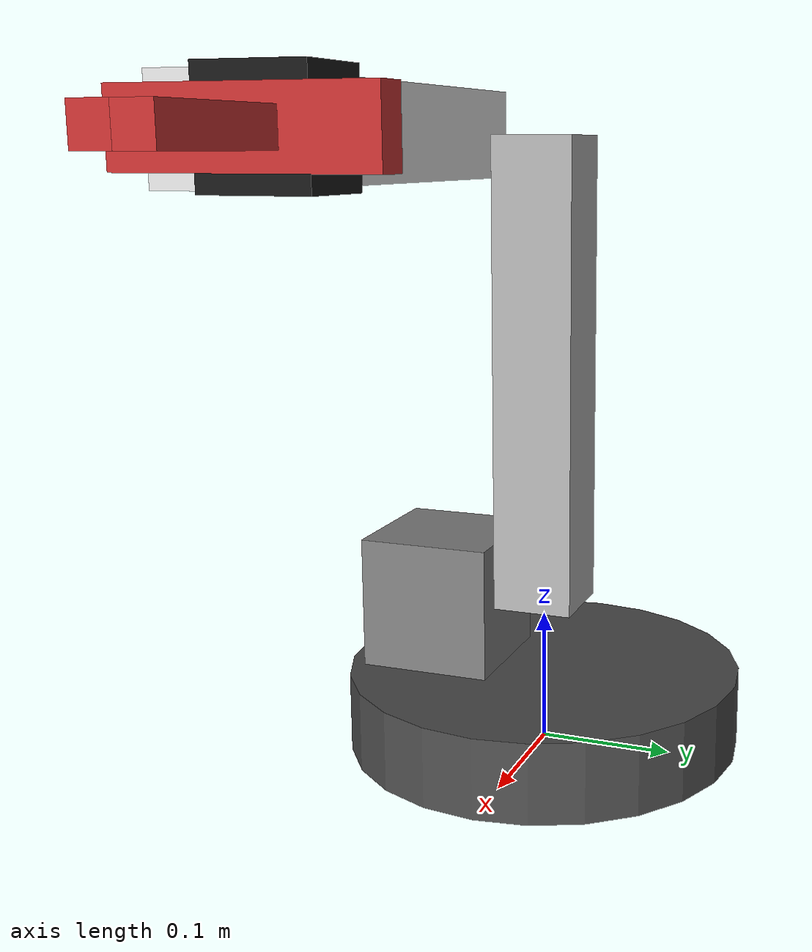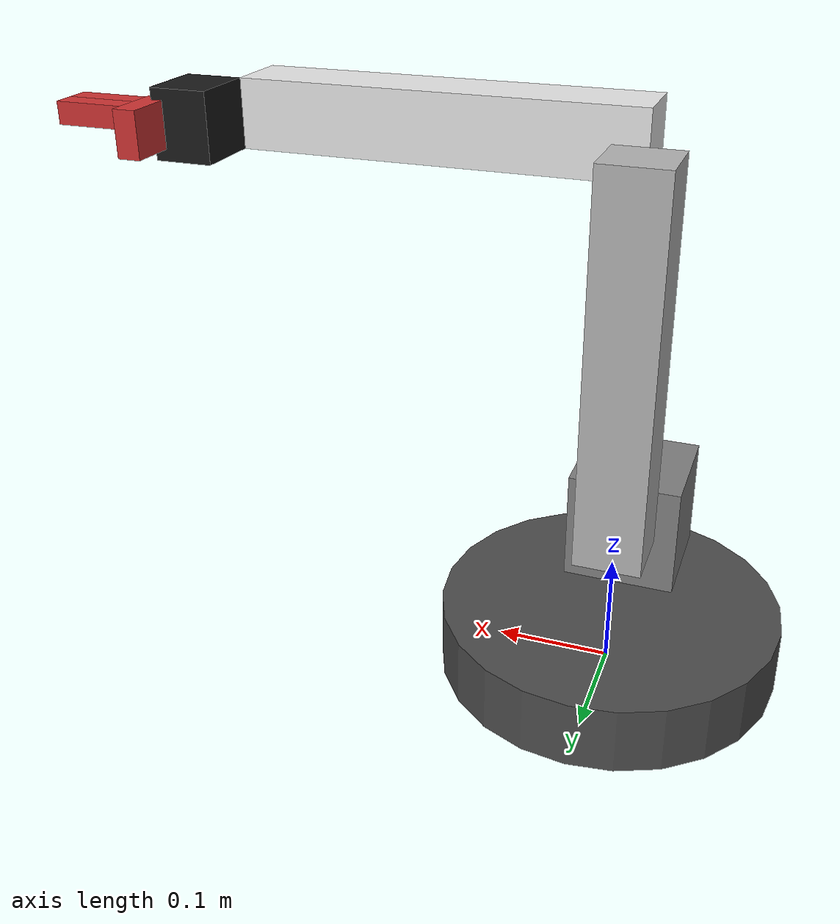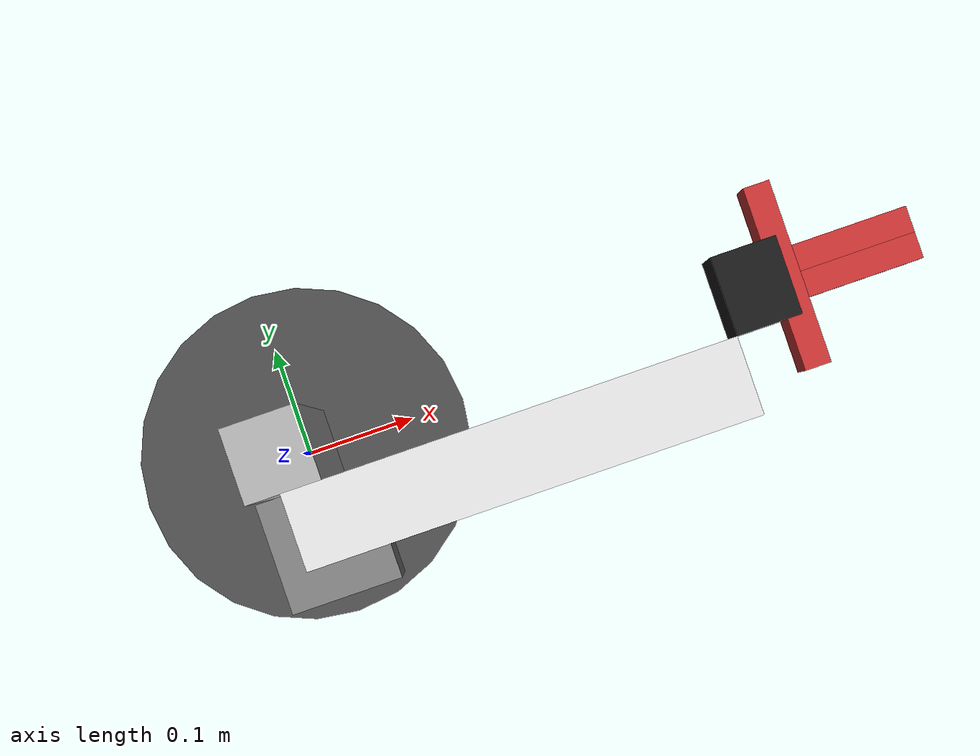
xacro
<?xml version="1.0"?>
<robot xmlns:xacro="http://www.ros.org/wiki/xacro" name="r4bot">
    <xacro:arg name="initial_positions_file" default="initial_positions.yaml" />

    <!-- Import r4bot urdf file -->
    <xacro:include filename="$(find arm)/description/urdf/r4bot.urdf.xacro" />

    <!-- Import control_xacro -->
    <xacro:include filename="r4bot.ros2_control.xacro" />

    <xacro:r4bot_ros2_control name="FakeSystem" initial_positions_file="$(arg initial_positions_file)"/>

</robot>

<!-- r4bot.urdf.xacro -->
<robot xmlns:xacro="http://wiki.ros.org/xacro" name="r4bot">

  <!-- Import r6bot macro -->
  <xacro:include filename="$(find arm)/description/urdf/r4bot_description.urdf.xacro"/>

  <!-- create link fixed to the "world" -->
  <link name="world"/>

  <xacro:arm/>

  <!-- Import r4bot ros2_control description -->
  <xacro:include filename="$(find arm)/description/urdf/r4bot.ros2_control.xacro" />
  <xacro:r4bot_ros2_control name="r4bot"/>

</robot>

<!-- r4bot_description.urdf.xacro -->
<robot xmlns:xacro="http://www.ros.org/wiki/xacro">

  <xacro:macro name="arm">

  <!-- ========== VARIABLE DEFINITIONS ========== -->

  <!-- Base Link Properties -->
  <xacro:property name="base_radius" value="0.15"/>
  <xacro:property name="base_length" value="0.06"/>
  <xacro:property name="base_height" value="0.03"/>
  <xacro:property name="base_mass" value="2.0"/>

  <!-- Link 1 Properties -->
  <xacro:property name="link1_length" value="0.1"/>
  <xacro:property name="link1_width" value="0.1"/>
  <xacro:property name="link1_height" value="0.1"/>
  <xacro:property name="link1_offset_y" value="0.08"/>
  <xacro:property name="link1_offset_z" value="0.05"/>
  <xacro:property name="link1_mass" value="1.5"/>

  <!-- Link 2 Properties -->
  <xacro:property name="link2_length" value="0.06"/>
  <xacro:property name="link2_width" value="0.06"/>
  <xacro:property name="link2_height" value="0.35"/>
  <xacro:property name="link2_offset_y" value="${link2_length/2}"/>
  <xacro:property name="link2_offset_z" value="${link2_height/2}"/>
  <xacro:property name="link2_mass" value="3.0"/>

  <!-- Link 3 Properties -->
  <xacro:property name="link3_length" value="0.35"/>
  <xacro:property name="link3_width" value="0.06"/>
  <xacro:property name="link3_height" value="0.06"/>
  <xacro:property name="link3_offset_x" value="${link3_length/2}"/>
  <xacro:property name="link3_offset_y" value="${link3_width/2}"/>
  <xacro:property name="link3_offset_z" value="-0.03"/>
  <xacro:property name="link3_mass" value="2.0"/>

  <!-- Link 4 Properties -->
  <xacro:property name="link4_length" value="0.05"/>
  <xacro:property name="link4_width" value="0.06"/>
  <xacro:property name="link4_height" value="0.06"/>
  <xacro:property name="link4_offset_x" value="${link4_length/2}"/>
  <xacro:property name="link4_offset_y" value="${link4_width/2}"/>
  <xacro:property name="link4_offset_z" value="0.03"/>
  <xacro:property name="link4_mass" value="1.0"/>

  <!-- Gripper Properties -->
  <xacro:property name="gripper_base_length" value="0.02"/>
  <xacro:property name="gripper_base_width" value="0.14"/>
  <xacro:property name="gripper_base_height" value="0.04"/>
  <xacro:property name="gripper_base_offset_z" value="0.03"/>
  <xacro:property name="gripper_base_mass" value="0.2"/>

  <xacro:property name="gripper_finger_length" value="0.1"/>
  <xacro:property name="gripper_finger_width" value="0.02"/>
  <xacro:property name="gripper_finger_height" value="0.02"/>
  <xacro:property name="gripper_finger_mass" value="0.1"/>
  <xacro:property name="gripper_max_opening" value="0.1"/>

  <!-- End Effector Properties -->
  <xacro:property name="end_effector_offset_x" value="0.06"/>

  <!-- ========== JOINT PROPERTIES ========== -->

  <!-- Joint angle variables (default values in radians) -->
  <xacro:property name="joint_1_angle" value="0.0"/>
  <xacro:property name="joint_2_angle" value="0.0"/>
  <xacro:property name="joint_3_angle" value="${pi/2}"/>
  <xacro:property name="joint_4_angle" value="0.0"/>

  <!-- Joint limit variables for revolute joints (180 degree range) -->
  <xacro:property name="joint_1_lower_limit" value="${-pi/2}"/>
  <xacro:property name="joint_1_upper_limit" value="${pi/2}"/>
  <xacro:property name="joint_2_lower_limit" value="${-pi/2}"/>
  <xacro:property name="joint_2_upper_limit" value="${pi/2}"/>
  <xacro:property name="joint_3_lower_limit" value="${-pi/2}"/>
  <xacro:property name="joint_3_upper_limit" value="${pi/2}"/>
  <xacro:property name="joint_4_lower_limit" value="${-pi/2}"/>
  <xacro:property name="joint_4_upper_limit" value="${pi/2}"/>

  <!-- Joint effort and velocity limits -->
  <xacro:property name="revolute_joint_effort" value="1000.0"/>
  <xacro:property name="revolute_joint_velocity" value="2.5"/>
  <xacro:property name="prismatic_joint_effort" value="50.0"/>
  <xacro:property name="prismatic_joint_velocity" value="0.5"/>

  <!-- Joint origin offsets (calculated from link dimensions) -->
  <xacro:property name="joint_1_offset_z" value="${base_length}"/>
  <xacro:property name="joint_2_offset_y" value="${link1_offset_y - link1_length/2}"/>
  <xacro:property name="joint_2_offset_z" value="${link1_offset_z}"/>
  <xacro:property name="joint_3_offset_z" value="${link2_height}"/>
  <xacro:property name="joint_4_offset_x" value="${link3_length}"/>
  <xacro:property name="joint_4_offset_y" value="${link4_offset_y}"/>
  <xacro:property name="gripper_base_joint_offset_x" value="${link4_offset_x + link4_length/2}"/>

  <!-- ========== COLOR PROPERTIES ========== -->

  <!-- Named color definitions -->
  <xacro:property name="black" value="0.1 0.1 0.1 1.0"/>
  <xacro:property name="dark_grey" value="0.3 0.3 0.3 1.0"/>
  <xacro:property name="grey" value="0.5 0.5 0.5 1.0"/>
  <xacro:property name="light_grey" value="0.7 0.7 0.7 1.0"/>
  <xacro:property name="white" value="0.9 0.9 0.9 1.0"/>
  <xacro:property name="red" value="0.8 0.2 0.2 1.0"/>
  <xacro:property name="green" value="0.2 0.8 0.2 1.0"/>
  <xacro:property name="blue" value="0.2 0.2 0.8 1.0"/>

  <!-- Color assignment for each link -->
  <xacro:property name="base_color" value="${dark_grey}"/>
  <xacro:property name="link1_color" value="${grey}"/>
  <xacro:property name="link2_color" value="${light_grey}"/>
  <xacro:property name="link3_color" value="${white}"/>
  <xacro:property name="link4_color" value="${black}"/>
  <xacro:property name="gripper_color" value="${red}"/>

  <!-- ========== ROBOT STRUCTURE ========== -->

  <!-- ========== GEOMETRY PROPERTIES ========== -->

  <!-- Basic cylindrical base link -->
  <link name="base_link">
    <visual>
      <origin xyz="0 0 ${base_height}" rpy="0 0 0"/>
      <geometry>
        <cylinder radius="${base_radius}" length="${base_length}"/>
      </geometry>
      <material name="base_material">
        <color rgba="${base_color}"/>
      </material>
    </visual>
    <collision>
      <origin xyz="0 0 ${base_height}" rpy="0 0 0"/>
      <geometry>
        <cylinder radius="${base_radius}" length="${base_length}"/>
      </geometry>
    </collision>
    <inertial>
      <mass value="${base_mass}"/>
      <origin xyz="0 0 ${base_height}" rpy="0 0 0"/>
      <inertia ixx="0.01" ixy="0.0" ixz="0.0" iyy="0.01" iyz="0.0" izz="0.01"/>
    </inertial>
  </link>

  <!-- base_joint fixes base_link to the environment -->
  <joint name="base_joint" type="fixed">
    <parent link="world"/>
    <child link="base_link"/>
    <origin xyz="0 0 0" rpy="0 0 0"/>
    <axis xyz="0 0 1"/>
  </joint>

  <!-- joints - main serial chain -->
  <joint name="joint_1" type="revolute">
    <parent link="base_link"/>
    <child link="link_1"/>
    <origin xyz="0 0 ${joint_1_offset_z}" rpy="0 0 0"/>
    <axis xyz="0 0 1"/>
    <limit effort="${revolute_joint_effort}" lower="${joint_1_lower_limit}" upper="${joint_1_upper_limit}" velocity="${revolute_joint_velocity}"/>
  </joint>

  <link name="link_1">
    <visual>
      <origin xyz="0 ${-link1_offset_y} ${link1_offset_z}" rpy="0 0 0"/>
      <geometry>
        <box size="${link1_length} ${link1_width} ${link1_height}"/>
      </geometry>
      <material name="link1_material">
        <color rgba="${link1_color}"/>
      </material>
    </visual>
    <collision>
      <origin xyz="0 ${-link1_offset_y} ${link1_offset_z}" rpy="0 0 0"/>
      <geometry>
        <box size="${link1_length} ${link1_width} ${link1_height}"/>
      </geometry>
    </collision>
    <inertial>
      <mass value="${link1_mass}"/>
      <origin xyz="0 0 0.09" rpy="0 0 0"/>
      <inertia ixx="0.008" ixy="0.0" ixz="0.0" iyy="0.008" iyz="0.0" izz="0.004"/>
    </inertial>
  </link>

  <joint name="joint_2" type="revolute">
    <parent link="link_1"/>
    <child link="link_2"/>
    <origin xyz="0 ${-joint_2_offset_y} ${joint_2_offset_z}" rpy="0 0 0"/>
    <axis xyz="0 1 0"/>
    <limit effort="${revolute_joint_effort}" lower="${joint_2_lower_limit}" upper="${joint_2_upper_limit}" velocity="${revolute_joint_velocity}"/>
  </joint>

  <link name="link_2">
    <visual>
      <origin xyz="0 ${link2_offset_y} ${link2_offset_z}" rpy="0 0 0"/>
      <geometry>
        <box size="${link2_length} ${link2_width} ${link2_height}"/>
      </geometry>
      <material name="link2_material">
        <color rgba="${link2_color}"/>
      </material>
    </visual>
    <collision>
      <origin xyz="0 ${link2_offset_y} ${link2_offset_z}" rpy="0 0 0"/>
      <geometry>
        <box size="${link2_length} ${link2_width} ${link2_height}"/>
      </geometry>
    </collision>
    <inertial>
      <mass value="${link2_mass}"/>
      <origin xyz="0.34 0 0" rpy="0 0 0"/>
      <inertia ixx="0.005" ixy="0.0" ixz="0.0" iyy="0.12" iyz="0.0" izz="0.12"/>
    </inertial>
  </link>

  <joint name="joint_3" type="revolute">
    <parent link="link_2"/>
    <child link="link_3"/>
    <origin xyz="0 0 ${joint_3_offset_z}" rpy="0 0 0"/>
    <axis xyz="0 1 0"/>
    <limit effort="${revolute_joint_effort}" lower="${joint_3_lower_limit}" upper="${joint_3_upper_limit}" velocity="${revolute_joint_velocity}"/>
  </joint>

  <link name="link_3">
    <visual>
      <origin xyz="${link3_offset_x} ${-link3_offset_y} 0" rpy="0 0 0"/>
      <geometry>
        <box size="${link3_length} ${link3_width} ${link3_height}"/>
      </geometry>
      <material name="link3_material">
        <color rgba="${link3_color}"/>
      </material>
    </visual>
    <collision>
      <origin xyz="${link3_offset_x} ${-link3_offset_y} 0" rpy="0 0 0"/>
      <geometry>
        <box size="${link3_length} ${link3_width} ${link3_height}"/>
      </geometry>
    </collision>
    <inertial>
      <mass value="${link3_mass}"/>
      <origin xyz="0.25 0 0" rpy="0 0 0"/>
      <inertia ixx="0.003" ixy="0.0" ixz="0.0" iyy="0.045" iyz="0.0" izz="0.045"/>
    </inertial>
  </link>

  <joint name="joint_4" type="revolute">
    <parent link="link_3"/>
    <child link="link_4"/>
    <origin xyz="${joint_4_offset_x} 0 0" rpy="0 0 0"/>
    <axis xyz="0 1 0"/>
    <limit effort="${revolute_joint_effort}" lower="${joint_4_lower_limit}" upper="${joint_4_upper_limit}" velocity="${revolute_joint_velocity}"/>
  </joint>

  <link name="link_4">
    <visual>
      <origin xyz="${link4_offset_x} ${link4_offset_y} 0" rpy="0 0 0"/>
      <geometry>
        <box size="${link4_length} ${link4_width} ${link4_height}"/>
      </geometry>
      <material name="link4_material">
        <color rgba="${link4_color}"/>
      </material>
    </visual>
    <collision>
      <origin xyz="${link4_offset_x} 0 0" rpy="0 0 0"/>
      <geometry>
        <box size="${link4_length} ${link4_width} ${link4_height}"/>
      </geometry>
    </collision>
    <inertial>
      <mass value="${link4_mass}"/>
      <origin xyz="0.09 0 0" rpy="0 0 0"/>
      <inertia ixx="0.001" ixy="0.0" ixz="0.0" iyy="0.003" iyz="0.0" izz="0.003"/>
    </inertial>
  </link>

  <!-- Gripper base link (attached to link_4) -->
  <joint name="gripper_base_joint" type="fixed">
    <parent link="link_4"/>
    <child link="gripper_base"/>
    <origin xyz="${link4_length} ${link4_offset_y} 0" rpy="0 0 0"/>
  </joint>

  <link name="gripper_base">
    <visual>
      <origin xyz="0 0 0" rpy="0 0 0"/>
      <geometry>
        <box size="${gripper_base_length} ${gripper_base_width} ${gripper_base_height}"/>
      </geometry>
      <material name="gripper_base_material">
        <color rgba="${gripper_color}"/>
      </material>
    </visual>
    <collision>
      <origin xyz="0 0 0" rpy="0 0 0"/>
      <geometry>
        <box size="${gripper_base_length} ${gripper_base_width} ${gripper_base_height}"/>
      </geometry>
    </collision>
    <inertial>
      <mass value="${gripper_base_mass}"/>
      <origin xyz="0 0 0" rpy="0 0 0"/>
      <inertia ixx="0.0001" ixy="0.0" ixz="0.0" iyy="0.0001" iyz="0.0" izz="0.0001"/>
    </inertial>
  </link>

  <!-- Left finger prismatic joint and link -->
  <joint name="gripper_left_finger_joint" type="prismatic">
    <parent link="gripper_base"/>
    <child link="gripper_left_finger"/>
    <origin xyz="0 0 0" rpy="0 0 0"/>
    <axis xyz="0 1 0"/>
    <limit effort="${prismatic_joint_effort}" lower="0.0" upper="${gripper_max_opening/2}" velocity="${prismatic_joint_velocity}"/>
  </joint>

  <link name="gripper_left_finger">
    <visual>
      <origin xyz="${gripper_finger_length/2} ${gripper_finger_width/2} 0" rpy="0 0 0"/>
      <geometry>
        <box size="${gripper_finger_length} ${gripper_finger_width} ${gripper_finger_height}"/>
      </geometry>
      <material name="gripper_finger_material">
        <color rgba="${gripper_color}"/>
      </material>
    </visual>
    <collision>
      <origin xyz="${gripper_finger_length/2} ${gripper_finger_width/2} 0" rpy="0 0 0"/>
      <geometry>
        <box size="${gripper_finger_length} ${gripper_finger_width} ${gripper_finger_height}"/>
      </geometry>
    </collision>
    <inertial>
      <mass value="${gripper_finger_mass}"/>
      <origin xyz="0 ${-gripper_finger_width/2} ${gripper_finger_height/2}" rpy="0 0 0"/>
      <inertia ixx="0.00005" ixy="0.0" ixz="0.0" iyy="0.00005" iyz="0.0" izz="0.00005"/>
    </inertial>
  </link>

  <!-- Right finger prismatic joint and link -->
  <joint name="gripper_right_finger_joint" type="prismatic">
    <parent link="gripper_base"/>
    <child link="gripper_right_finger"/>
    <origin xyz="0 0 0" rpy="0 0 0"/>
    <axis xyz="0 -1 0"/>
    <limit effort="${prismatic_joint_effort}" lower="0.0" upper="${gripper_max_opening/2}" velocity="${prismatic_joint_velocity}"/>
  </joint>

  <link name="gripper_right_finger">
    <visual>
      <origin xyz="${gripper_finger_length/2} ${-gripper_finger_width/2} 0" rpy="0 0 0"/>
      <geometry>
        <box size="${gripper_finger_length} ${gripper_finger_width} ${gripper_finger_height}"/>
      </geometry>
      <material name="gripper_finger_material">
        <color rgba="${gripper_color}"/>
      </material>
    </visual>
    <collision>
      <origin xyz="${gripper_finger_length/2} ${-gripper_finger_width/2} 0" rpy="0 0 0"/>
      <geometry>
        <box size="${gripper_finger_length} ${gripper_finger_width} ${gripper_finger_height}"/>
      </geometry>
    </collision>
    <inertial>
      <mass value="${gripper_finger_mass}"/>
      <origin xyz="0 ${gripper_finger_width/2} ${gripper_finger_height/2}" rpy="0 0 0"/>
      <inertia ixx="0.00005" ixy="0.0" ixz="0.0" iyy="0.00005" iyz="0.0" izz="0.00005"/>
    </inertial>
  </link>

  <!-- End effector frame (for convenience in motion planning) -->
  <joint name="end_effector_roll_virtual_joint" type="revolute">
    <parent link="gripper_base"/>
    <child link="end_effector_roll_virtual"/>
    <origin xyz="${end_effector_offset_x} 0 0" rpy="0 0 0"/>
    <axis xyz="0 0 1"/>
    <limit effort="0.0" lower="-3.14" upper="3.14" velocity="0.0"/>
  </joint>

  <link name="end_effector_roll_virtual">
  </link>

  <joint name="end_effector_yaw_virtual_joint" type="revolute">
    <parent link="end_effector_roll_virtual"/>
    <child link="end_effector_yaw_virtual"/>
    <origin xyz="0 0 0" rpy="0 0 0"/>
    <axis xyz="0 0 1"/>
    <limit effort="0.0" lower="-3.14" upper="3.14" velocity="0.0"/>
  </joint>

  <link name="end_effector_yaw_virtual">
  </link>
  <!-- End effector frame -->
  <joint name="end_effector_joint" type="fixed">
    <parent link="end_effector_yaw_virtual"/>
    <child link="end_effector_frame"/>
    <origin xyz="0 0 0" rpy="0 0 0"/>
  </joint>

  <link name="end_effector_frame">
  </link>
  </xacro:macro>
</robot>
